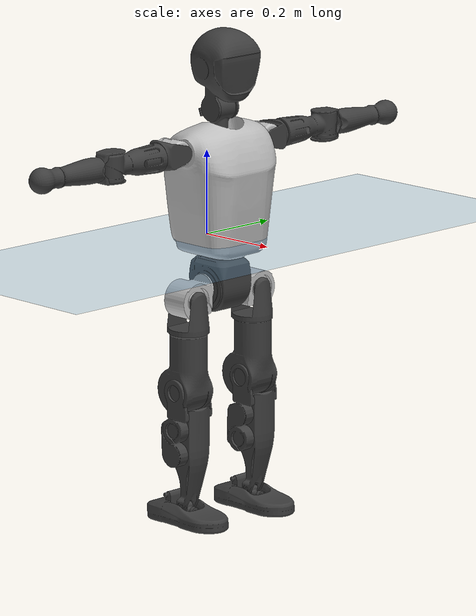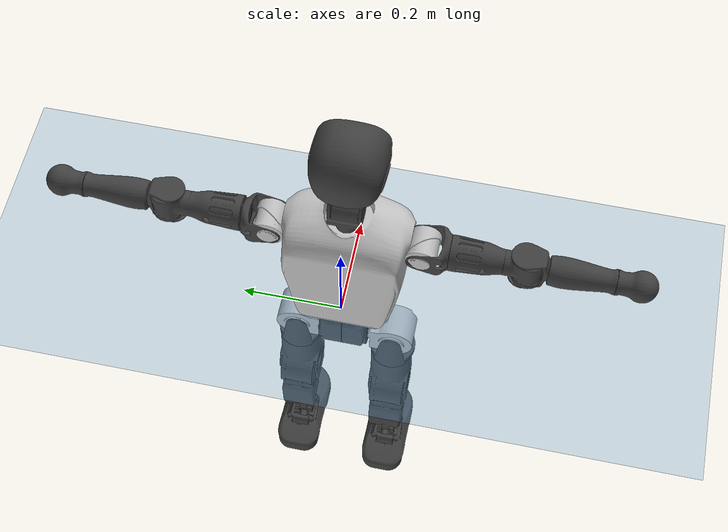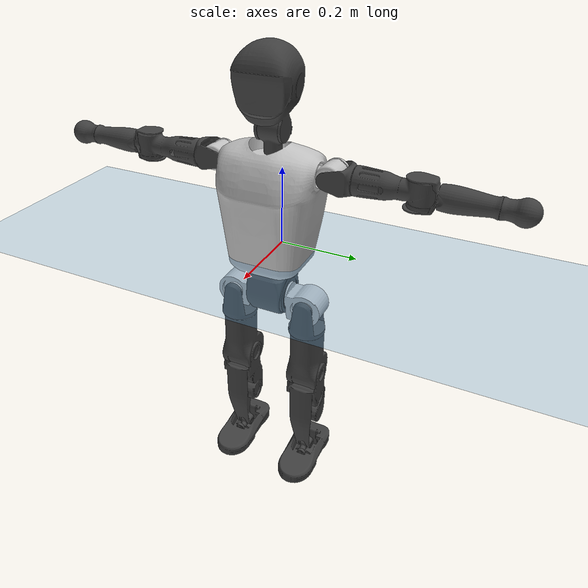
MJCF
<mujoco model="T1">
  <compiler angle="radian" assetdir="assets" balanceinertia="true" inertiafromgeom="false"/>

  <option timestep="0.005" density="1.2" viscosity="2e-05"/>

  <size nkey="1"/>

  <visual>
    <quality shadowsize="8192"/>
    <map shadowclip="0.5"/>
  </visual>

  <default>
    <default class="/">
      <joint armature="0.01" damping="0.01" frictionloss="0.1"/>
      <geom contype="0" conaffinity="0" group="1" solref="-1000 -80"/>
      <site size="0.01 0.005 0.005" group="5"/>
      <general forcelimited="true" biastype="affine" gainprm="25" biasprm="0 -25 -0.6"/>
      <default class="t1">
        <geom rgba="0.25 0.25 0.25 1"/>
        <default class="visual">
          <geom type="mesh" group="2"/>
        </default>
        <default class="collision">
          <geom group="3"/>
        </default>
        <default class="foot">
          <geom size="0.1115 0.05 0.015" type="box" condim="6" group="4" priority="1" solimp="0.015 1 0.015"/>
        </default>
        <default class="reward_collision_sphere">
          <geom group="5" rgba="1 0 0 1"/>
        </default>
      </default>
    </default>
  </default>

  <asset>
    <texture type="skybox" colorspace="auto" name="//unnamed_texture_0" builtin="gradient" rgb1="0.95 0.95 0.95" rgb2="0.95 0.95 0.95" width="100" height="600"/>
    <texture type="2d" colorspace="auto" name="texplane" builtin="checker" rgb1="0.345 0.575 0.748" rgb2="0.345 0.575 0.748" markrgb="1 1 1" width="512" height="512"/>
    <material name="MatPlane" class="/" texture="texplane" texuniform="true" texrepeat="2 2" specular="0.9"/>
    <mesh name="Trunk" class="/" file="Trunk.stl"/>
    <mesh name="H1" class="/" file="H1.stl"/>
    <mesh name="H2" class="/" file="H2.stl"/>
    <mesh name="AL1" class="/" file="AL1.stl"/>
    <mesh name="AL2" class="/" file="AL2.stl"/>
    <mesh name="AL3" class="/" file="AL3.stl"/>
    <mesh name="left_hand_link" class="/" file="left_hand_link.stl"/>
    <mesh name="AR1" class="/" file="AR1.stl"/>
    <mesh name="AR2" class="/" file="AR2.stl"/>
    <mesh name="AR3" class="/" file="AR3.stl"/>
    <mesh name="right_hand_link" class="/" file="right_hand_link.stl"/>
    <mesh name="Waist" class="/" file="Waist.stl"/>
    <mesh name="Hip_Pitch_Left" class="/" file="Hip_Pitch_Left.stl"/>
    <mesh name="Hip_Roll_Left" class="/" file="Hip_Roll_Left.stl"/>
    <mesh name="Hip_Yaw_Left" class="/" file="Hip_Yaw_Left.stl"/>
    <mesh name="Shank_Left" class="/" file="Shank_Left.stl"/>
    <mesh name="Ankle_Cross_Left" class="/" file="Ankle_Cross_Left.stl"/>
    <mesh name="left_foot_link" class="/" file="left_foot_link.stl"/>
    <mesh name="Hip_Pitch_Right" class="/" file="Hip_Pitch_Right.stl"/>
    <mesh name="Hip_Roll_Right" class="/" file="Hip_Roll_Right.stl"/>
    <mesh name="Hip_Yaw_Right" class="/" file="Hip_Yaw_Right.stl"/>
    <mesh name="Shank_Right" class="/" file="Shank_Right.stl"/>
    <mesh name="Ankle_Cross_Right" class="/" file="Ankle_Cross_Right.stl"/>
    <mesh name="right_foot_link" class="/" file="right_foot_link.stl"/>
  </asset>

  <worldbody>
    <geom name="floor" class="/" size="100 100 0.125" type="plane" group="0" material="MatPlane"/>
    <light name="toplight_shadow" class="/" pos="0 0 5" dir="0.0990148 0.0990148 -0.990148" type="directional" ambient="0.04 0.04 0.04" diffuse="0.55 0.55 0.55" specular="0.12 0.12 0.12"/>
    <light name="toplight_fill" class="/" pos="0 0 5" dir="0.0990148 0.0990148 -0.990148" type="directional" castshadow="false" ambient="0.04 0.04 0.04" diffuse="0.3 0.3 0.3" specular="0.08 0.08 0.08"/>
    <body name="trunk" childclass="t1" pos="-0.00137134 -0.0028183 0.002146" quat="0.999999 0.00102297 -0.000583226 -4.86209e-05">
      <inertial pos="0.039468 -0.00157891 0.106753" quat="0.99998 0.00225289 -0.00556704 -0.0021096" mass="8.04085" diaginertia="0.0183276 0.0589794 0.0562307"/>
      <joint name="//unnamed_joint_0" type="free" armature="0" damping="0" frictionloss="0"/>
      <geom name="//unnamed_geom_1" class="visual" rgba="0.76 0.76 0.76 1" mesh="Trunk"/>
      <geom name="//unnamed_geom_2" class="collision" size="0.0666 0.0888 0.1332" pos="0.0434115 0 0.120002" type="box"/>
      <geom name="//unnamed_geom_3" class="reward_collision_sphere" size="0.10212" pos="0.0434115 0 0.100002"/>
      <geom name="//unnamed_geom_4" class="reward_collision_sphere" size="0.01332" pos="0.0434115 0.0799388 0"/>
      <geom name="//unnamed_geom_5" class="reward_collision_sphere" size="0.01332" pos="0.0434115 -0.0799388 0"/>
      <geom name="//unnamed_geom_6" class="reward_collision_sphere" size="0.01332" pos="0.0434115 0.100629 0.180003"/>
      <geom name="//unnamed_geom_7" class="reward_collision_sphere" size="0.01332" pos="0.0434115 -0.100629 0.180003"/>
      <site name="imu" pos="-0.0127415 -0.0133095 -0.00100621" size="0.00888"/>
      <camera name="track" pos="0 -1.88091 0" quat="0.707107 0.707107 0 0" mode="trackcom"/>
      <camera name="ego_camera" pos="0.08827 0 0.420007" quat="-0.5 -0.5 0.5 0.5"/>
      <body name="H1" pos="0.0455005 0.00095324 0.243905" quat="1 -0.000380953 -0.000355307 -0.000822965">
        <inertial pos="0.00063108 -0.00163708 0.0598179" quat="0.758531 -0.0107254 0.00602338 0.651521" mass="0.311803" diaginertia="4.70685e-05 0.000169043 0.000144678"/>
        <joint name="AAHead_yaw" pos="0 0 0" axis="-0.000498156 0.0127648 0.999918" range="-1.62277 1.54941" armature="0.00990816" damping="0.00696124" frictionloss="0.076638"/>
        <geom name="//unnamed_geom_8" class="visual" mesh="H1"/>
        <body name="H2" pos="0.00226393 0.000865136 0.0626273" quat="1 0.000278438 0.000431159 -3.94703e-05">
          <inertial pos="0.00457288 -0.00130425 0.0982327" quat="0.988837 0.104036 -0.0752208 -0.075631" mass="0.425684" diaginertia="0.000387134 0.00133318 0.00165341"/>
          <joint name="Head_pitch" pos="0 0 0" axis="0.0130469 -0.999896 -0.00609122" range="-1.20277 0.389076" armature="0.00853894" damping="0.0118586" frictionloss="0.0840058"/>
          <geom name="//unnamed_geom_9" class="visual" mesh="H2"/>
          <geom name="//unnamed_geom_10" class="collision" size="0.07104" pos="0.00723525 0 0.110002"/>
          <geom name="//unnamed_geom_11" class="reward_collision_sphere" size="0.07992" pos="0.0144705 0 0.100002"/>
        </body>
      </body>
      <body name="AL1" pos="0.0415758 0.0992351 0.218327" quat="1 8.99851e-05 0.000460643 6.43116e-05">
        <inertial pos="-0.0014981 0.042098 -0.00227659" quat="0.506296 0.502311 -0.505632 0.485473" mass="0.378916" diaginertia="0.000276425 0.000982042 0.000302239"/>
        <joint name="Left_Shoulder_Pitch" pos="0 0 0" axis="-0.000368174 0.999902 -0.0140106" stiffness="0.00954207" range="-3.30412 1.19519" armature="0.00892421" damping="0.0151708" frictionloss="0.0840897"/>
        <geom name="//unnamed_geom_12" class="visual" rgba="0.76 0.76 0.76 1" mesh="AL1"/>
        <body name="AL2" pos="0.00179678 0.0426581 -0.00284081" quat="1 -0.00047433 0.000413014 0.000196228">
          <inertial pos="0.00164862 0.0337523 -0.000499469" quat="0.488121 0.511752 -0.487906 0.51166" mass="0.109995" diaginertia="7.97099e-05 0.000246208 0.000173852"/>
          <joint name="Left_Shoulder_Roll" pos="0 0 0" axis="-0.999913 -0.0126479 0.00362821" range="-1.51977 1.73711" armature="0.00826383" damping="0" frictionloss="0.10046"/>
          <geom name="//unnamed_geom_13" class="visual" mesh="AL2"/>
          <body name="AL3" pos="0.0033441 0.0591641 0.00208763" quat="0.999999 -0.000142806 -0.000319521 -0.0010479">
            <inertial pos="-0.000557241 0.0774418 -0.00114102" quat="0.714281 0.699854 0.00248727 8.31959e-05" mass="0.711358" diaginertia="0.00249574 0.00949171 0.000589223"/>
            <joint name="Left_Elbow_Pitch" pos="0 0 0" axis="0.0140166 -0.999898 0.00269901" range="-2.23584 2.22391" armature="0.0100694" damping="0" frictionloss="0.101247"/>
            <geom name="//unnamed_geom_14" class="visual" mesh="AL3"/>
            <geom name="//unnamed_geom_15" class="collision" size="0.02664 0.0666" pos="0 0.0470228 0" quat="0.707105 0.707108 0 0" type="cylinder"/>
            <geom name="//unnamed_geom_16" class="reward_collision_sphere" size="0.031968"/>
            <body name="left_hand_link" pos="0.00259432 0.138591 -0.00135556" quat="0.999999 -0.000751431 0.000473929 0.000993397">
              <inertial pos="0.00011664 0.10382 -0.00231025" quat="0.708069 0.706122 -0.00463963 -0.00296342" mass="0.236146" diaginertia="0.00165846 0.00607178 0.000214296"/>
              <joint name="Left_Elbow_Yaw" pos="0 0 0" axis="-0.00339149 0.0169316 0.999851" stiffness="0.010364" range="-2.44524 0.00573825" armature="0.00881821" damping="0.0113749" frictionloss="0.0992243"/>
              <geom name="//unnamed_geom_17" class="visual" mesh="left_hand_link"/>
              <geom name="//unnamed_geom_18" class="collision" size="0.02664 0.0777" pos="0 0.122259 0" quat="0.707105 0.707108 0 0" type="cylinder"/>
              <geom name="//unnamed_geom_19" class="reward_collision_sphere" size="0.0444"/>
              <geom name="//unnamed_geom_20" class="reward_collision_sphere" size="0.03108" pos="0 0.10345 0"/>
              <geom name="//unnamed_geom_21" class="reward_collision_sphere" size="0.03108" pos="0 0.202198 0"/>
            </body>
          </body>
        </body>
      </body>
      <body name="AR1" pos="0.0408991 -0.0977966 0.219561" quat="1 -0.000494986 -0.000334608 0.000190929">
        <inertial pos="-0.00103105 -0.0449956 0.00247632" quat="0.504329 0.495386 -0.503965 0.496251" mass="0.371646" diaginertia="0.000259782 0.000957728 0.000301006"/>
        <joint name="Right_Shoulder_Pitch" pos="0 0 0" axis="-0.000371613 -1 -3.54118e-05" stiffness="0.00126193" range="-1.2297 3.30772" armature="0.00776889" damping="0.00945548" frictionloss="0.0862973"/>
        <geom name="//unnamed_geom_22" class="visual" rgba="0.76 0.76 0.76 1" mesh="AR1"/>
        <body name="AR2" pos="0.0005687 -0.0403618 -0.00117296" quat="1 -3.00668e-05 8.06154e-05 -2.41301e-05">
          <inertial pos="0.00311424 -0.0357675 -0.00223381" quat="0.511069 0.49439 -0.503087 0.491213" mass="0.115141" diaginertia="7.69591e-05 0.000246814 0.000170809"/>
          <joint name="Right_Shoulder_Roll" pos="0 0 0" axis="-0.999987 -0.000996902 -0.00506947" stiffness="0.0097965" range="-1.74397 1.6248" armature="0.0086967" damping="0" frictionloss="0.0875293"/>
          <geom name="//unnamed_geom_23" class="visual" mesh="AR2"/>
          <body name="AR3" pos="0.00242921 -0.0562253 -0.00316943" quat="1 0.000444774 -3.98244e-05 0.000445424">
            <inertial pos="0.000624176 -0.0825108 0.000948801" quat="0.708276 0.705932 0.00149211 -0.00151813" mass="0.714461" diaginertia="0.00256618 0.00983695 0.000644726"/>
            <joint name="Right_Elbow_Pitch" pos="0 0 0" axis="0.00442685 0.99999 0.000655" range="-2.27061 2.27569" armature="0.00998786" damping="0.00748616" frictionloss="0.077276"/>
            <geom name="//unnamed_geom_24" class="visual" mesh="AR3"/>
            <geom name="//unnamed_geom_25" class="collision" size="0.02664 0.0666" pos="0 -0.0470228 0" quat="0.707105 0.707108 0 0" type="cylinder"/>
            <geom name="//unnamed_geom_26" class="reward_collision_sphere" size="0.031968"/>
            <body name="right_hand_link" pos="-0.000171515 -0.13924 0.000670902" quat="0.999999 0.000576451 -0.000284592 -0.0010939">
              <inertial pos="-6.76596e-05 -0.102137 -0.00143132" quat="0.699136 0.714974 0.00188697 0.0042215" mass="0.233166" diaginertia="0.0015613 0.00598684 0.000220894"/>
              <joint name="Right_Elbow_Yaw" pos="0 0 0" axis="-0.00453426 0.00629164 0.99997" range="-0.0517927 2.48191" armature="0.0091132" damping="0.00504493" frictionloss="0.0894389"/>
              <geom name="//unnamed_geom_27" class="visual" mesh="right_hand_link"/>
              <geom name="//unnamed_geom_28" class="collision" size="0.02664 0.0777" pos="0 -0.122259 0" quat="0.707105 0.707108 0 0" type="cylinder"/>
              <geom name="//unnamed_geom_29" class="reward_collision_sphere" size="0.0444"/>
              <geom name="//unnamed_geom_30" class="reward_collision_sphere" size="0.03108" pos="0 -0.10345 0"/>
              <geom name="//unnamed_geom_31" class="reward_collision_sphere" size="0.03108" pos="0 -0.202198 0"/>
            </body>
          </body>
        </body>
      </body>
      <body name="Waist" pos="0.0478533 0.000136631 -0.116251" quat="1 -0.000489651 0.000539674 0.000157203">
        <inertial pos="0.000846051 -0.000266133 0.00953464" quat="0.984682 0.00170621 -0.173989 0.0112386" mass="1.75422" diaginertia="0.00102917 0.00395448 0.00473426"/>
        <joint name="Waist" pos="0 0 0" axis="-0.0143055 0.00609572 0.999879" range="-1.57356 1.58569" armature="0.00937362" damping="0.0231002" frictionloss="0.0764767"/>
        <geom name="//unnamed_geom_32" class="visual" mesh="Waist"/>
        <body name="Hip_Pitch_Left" pos="0.00381504 0.101553 -0.00155909" quat="1 0.000388505 -0.000597947 -8.05767e-05">
          <inertial pos="0.00271414 -0.00532432 -0.0208125" quat="0.973904 0.225725 0.023465 -0.00284907" mass="0.741424" diaginertia="0.000356647 0.00108377 0.00127656"/>
          <joint name="Left_Hip_Pitch" pos="0 0 0" axis="-0.00634972 0.999936 -0.00934211" stiffness="0.000575628" range="-1.80941 1.62403" armature="0.00933172" damping="0" frictionloss="0.092669"/>
          <geom name="//unnamed_geom_33" class="visual" rgba="0.76 0.76 0.76 1" mesh="Hip_Pitch_Left"/>
          <body name="Hip_Roll_Left" pos="0.0020479 -0.000244416 -0.0179373" quat="1 9.2439e-06 -7.87206e-06 -2.25804e-06">
            <inertial pos="-0.00155332 0.00278861 -0.0540512" quat="0.698201 -0.00229891 -0.0104283 0.715822" mass="0.265494" diaginertia="0.000347792 0.0010549 0.000505542"/>
            <joint name="Left_Hip_Roll" pos="0 0 0" axis="-0.999991 0.00205846 0.00364468" range="-1.57559 0.23438" armature="0.00858634" damping="0.00891151" frictionloss="0.0766196"/>
            <geom name="//unnamed_geom_34" class="visual" mesh="Hip_Roll_Left"/>
            <geom name="//unnamed_geom_35" class="reward_collision_sphere" size="0.04884"/>
            <body name="Hip_Yaw_Left" pos="-0.000935451 0.00197137 -0.0799032" quat="1 -2.47081e-05 2.9091e-05 1.94053e-06">
              <inertial pos="-0.0052577 -0.000871853 -0.0883846" quat="0.695412 -0.0226142 -0.0293453 0.717656" mass="1.42757" diaginertia="0.00499782 0.0179492 0.0024985"/>
              <joint name="Left_Hip_Yaw" pos="0 0 0" axis="-0.00821558 0.00919124 -0.999924" range="-0.967501 0.951076" armature="0.00922548" damping="0.0123711" frictionloss="0.0902715"/>
              <geom name="//unnamed_geom_36" class="visual" mesh="Hip_Yaw_Left"/>
              <geom name="//unnamed_geom_37" class="collision" size="0.0444 0.07104" type="cylinder"/>
              <body name="Shank_Left" pos="-0.00599516 0.00199871 -0.137356" quat="1 0.000167847 0.000279176 -0.000692452">
                <inertial pos="-0.00493573 -0.00206898 -0.124342" quat="0.997567 0.00631283 -0.0258647 0.0644354" mass="1.21912" diaginertia="0.00710067 0.0253826 0.00192036"/>
                <joint name="Left_Knee_Pitch" pos="0 0 0" axis="0.00211103 0.999989 0.00414459" stiffness="0.000936372" range="0.0402291 2.33493" armature="0.00916875" damping="0.0223284" frictionloss="0.0960315"/>
                <geom name="//unnamed_geom_38" class="visual" mesh="Shank_Left"/>
                <geom name="//unnamed_geom_39" class="collision" size="0.0444 0.0666" pos="0 0 -0.120002" type="cylinder"/>
                <geom name="//unnamed_geom_40" class="reward_collision_sphere" size="0.05772"/>
                <body name="Ankle_Cross_Left" pos="0.000759918 -0.000974135 -0.282874" quat="1 8.36202e-05 -0.000114951 -0.000306787">
                  <inertial pos="-0.00200627 0.000572717 -0.00564764" quat="0.440048 0.553177 0.550055 0.444738" mass="0.0483059" diaginertia="5.82186e-06 1.79746e-05 1.12416e-05"/>
                  <joint name="Left_Ankle_Pitch" pos="0 0 0" axis="4.49125e-05 0.999916 -0.0129391" range="-0.891401 0.353103" armature="0.00890034" damping="0.00582203" frictionloss="0.0806132"/>
                  <geom name="//unnamed_geom_41" class="visual" mesh="Ankle_Cross_Left"/>
                  <body name="left_foot_link" pos="0.00111679 0.00194755 -0.011857" quat="0.999999 0.000960984 0.000120485 0.000550443">
                    <inertial pos="0.0025015 0.00043018 -0.0103126" quat="-0.000228828 0.625916 -0.0123867 0.779792" mass="0.4961" diaginertia="0.00054968 0.00179504 0.00215773"/>
                    <joint name="Left_Ankle_Roll" pos="0 0 0" axis="-0.999998 -0.000299244 -0.00221316" range="-0.454868 0.396996" armature="0.00892668" damping="0" frictionloss="0.0933744"/>
                    <geom name="//unnamed_geom_42" class="visual" mesh="left_foot_link"/>
                    <geom name="left_foot" class="foot" size="0.109797 0.0403171 0.0124591" pos="0.00723525 0 -0.0150003"/>
                    <geom name="//unnamed_geom_44" class="reward_collision_sphere" size="0.046176" pos="0.00723525 0 -0.0150003"/>
                    <geom name="//unnamed_geom_45" class="reward_collision_sphere" size="0.02664" pos="0.0687349 -0.0216305 -0.0150003"/>
                    <geom name="//unnamed_geom_46" class="reward_collision_sphere" size="0.02664" pos="-0.0506467 -0.0216305 -0.0150003"/>
                    <site name="left_foot" class="foot" pos="0.00723525 0 -0.0150003" size="0.00888"/>
                  </body>
                </body>
              </body>
            </body>
          </body>
        </body>
        <body name="Hip_Pitch_Right" pos="-0.00345514 -0.100836 0.000131261" quat="0.999999 -0.00115274 0.000791071 0.00087573">
          <inertial pos="-0.00199806 0.00687499 -0.0150868" quat="0.973581 -0.227658 0.0174384 -0.00267322" mass="0.732079" diaginertia="0.000364862 0.00110548 0.00130371"/>
          <joint name="Right_Hip_Pitch" pos="0 0 0" axis="0.00128199 -0.999999 -0.000238718" range="-1.56792 1.82202" armature="0.00926548" damping="0" frictionloss="0.101089"/>
          <geom name="//unnamed_geom_47" class="visual" rgba="0.76 0.76 0.76 1" mesh="Hip_Pitch_Right"/>
          <body name="Hip_Roll_Right" pos="0.00242093 0.000504718 -0.0215818" quat="1 3.70656e-06 7.03753e-06 7.18443e-06">
            <inertial pos="-0.00172671 -0.00242408 -0.0564626" quat="0.709485 -0.0121176 -0.013411 0.704489" mass="0.279507" diaginertia="0.000342137 0.00112101 0.000507468"/>
            <joint name="Right_Hip_Roll" pos="0 0 0" axis="-0.999986 -0.0011886 -0.00519247" range="-0.249827 1.58716" armature="0.00990188" damping="0.00591449" frictionloss="0.0795022"/>
            <geom name="//unnamed_geom_48" class="visual" mesh="Hip_Roll_Right"/>
            <geom name="//unnamed_geom_49" class="reward_collision_sphere" size="0.04884"/>
            <body name="Hip_Yaw_Right" pos="-0.00188883 0.000997662 -0.0823134" quat="1 8.39022e-05 -2.23299e-05 6.61084e-06">
              <inertial pos="-0.00477784 -0.00314375 -0.0870469" quat="0.714521 -0.0277912 -0.0337343 0.698247" mass="1.56595" diaginertia="0.00507453 0.019817 0.00258352"/>
              <joint name="Right_Hip_Yaw" pos="0 0 0" axis="0.00187224 -0.00423686 -0.999989" stiffness="0.00873158" range="-0.979317 1.00762" armature="0.00790253" damping="0" frictionloss="0.0921188"/>
              <geom name="//unnamed_geom_50" class="visual" mesh="Hip_Yaw_Right"/>
              <geom name="//unnamed_geom_51" class="collision" size="0.0444 0.07104" type="cylinder"/>
              <body name="Shank_Right" pos="-0.00770337 0.000605165 -0.135757" quat="1 9.27248e-07 4.20323e-05 -1.36043e-05">
                <inertial pos="-0.00201622 0.00137993 -0.121924" quat="0.998738 -0.000609494 -0.0369253 -0.034044" mass="1.28676" diaginertia="0.00731051 0.0260793 0.00196191"/>
                <joint name="Right_Knee_Pitch" pos="0 0 0" axis="-0.00479883 -0.999988 -0.000405278" range="-2.34111 0.000737174" armature="0.00889941" damping="0.00679875" frictionloss="0.0970595"/>
                <geom name="//unnamed_geom_52" class="visual" mesh="Shank_Right"/>
                <geom name="//unnamed_geom_53" class="collision" size="0.0444 0.0666" pos="0 0 -0.120002" type="cylinder"/>
                <geom name="//unnamed_geom_54" class="reward_collision_sphere" size="0.05772"/>
                <body name="Ankle_Cross_Right" pos="0.00284725 0.000177492 -0.280449" quat="1 3.76155e-05 -7.24735e-06 4.91581e-05">
                  <inertial pos="-0.0020168 0.00247484 -0.00831793" quat="0.444131 0.55859 0.546927 0.437716" mass="0.0492598" diaginertia="5.94316e-06 1.89824e-05 1.09954e-05"/>
                  <joint name="Right_Ankle_Pitch" pos="0 0 0" axis="0.00657432 -0.999947 -0.00786006" range="-0.366743 0.862937" armature="0.00876032" damping="0.00531795" frictionloss="0.0906345"/>
                  <geom name="//unnamed_geom_55" class="visual" mesh="Ankle_Cross_Right"/>
                  <body name="right_foot_link" pos="0.000167816 -0.00394049 -0.00912627" quat="1 -8.64652e-05 1.05465e-05 -0.0001002">
                    <inertial pos="0.00217869 -0.000515667 -0.0065094" quat="-0.0138127 0.619514 -0.00209299 0.784861" mass="0.475022" diaginertia="0.000548081 0.00177322 0.00213772"/>
                    <joint name="Right_Ankle_Roll" pos="0 0 0" axis="-0.999891 0.000187368 0.0147414" stiffness="0.00102394" range="-0.435729 0.418105" armature="0.00936035" damping="0.00942946" frictionloss="0.077812"/>
                    <geom name="//unnamed_geom_56" class="visual" mesh="right_foot_link"/>
                    <geom name="right_foot" class="foot" size="0.103512 0.0397816 0.0121126" pos="0.00723525 0 -0.0150003"/>
                    <geom name="//unnamed_geom_58" class="reward_collision_sphere" size="0.03552"/>
                    <geom name="//unnamed_geom_59" class="reward_collision_sphere" size="0.02664" pos="0.00723525 0 -0.0150003"/>
                    <geom name="//unnamed_geom_60" class="reward_collision_sphere" size="0.02664" pos="0.0687349 0.0216305 -0.0150003"/>
                    <geom name="//unnamed_geom_61" class="reward_collision_sphere" size="0.02664" pos="-0.0506467 0.0216305 -0.0150003"/>
                    <site name="right_foot" class="foot" pos="0.00723525 0 -0.0150003" size="0.00888"/>
                  </body>
                </body>
              </body>
            </body>
          </body>
        </body>
      </body>
    </body>
  </worldbody>

  <contact>
    <pair class="/" geom1="floor" geom2="left_foot" name="//unnamed_contact_0"/>
    <pair class="/" geom1="floor" geom2="right_foot" name="//unnamed_contact_1"/>
  </contact>

  <actuator>
    <general name="AAHead_yaw" class="/" joint="AAHead_yaw" forcerange="-5.58687 5.58687" gainprm="22.1327" biasprm="0 -22.1327 -0.507779"/>
    <general name="Head_pitch" class="/" joint="Head_pitch" forcerange="-6.45804 6.45804" gainprm="22.1327" biasprm="0 -22.1327 -0.507779"/>
    <general name="Left_Shoulder_Pitch" class="/" joint="Left_Shoulder_Pitch" forcerange="-16.0801 16.0801" gainprm="22.1327" biasprm="0 -22.1327 -0.507779"/>
    <general name="Left_Shoulder_Roll" class="/" joint="Left_Shoulder_Roll" forcerange="-16.5154 16.5154" gainprm="22.1327" biasprm="0 -22.1327 -0.507779"/>
    <general name="Left_Elbow_Pitch" class="/" joint="Left_Elbow_Pitch" forcerange="-17.722 17.722" gainprm="22.1327" biasprm="0 -22.1327 -0.507779"/>
    <general name="Left_Elbow_Yaw" class="/" joint="Left_Elbow_Yaw" forcerange="-17.2942 17.2942" gainprm="22.1327" biasprm="0 -22.1327 -0.507779"/>
    <general name="Right_Shoulder_Pitch" class="/" joint="Right_Shoulder_Pitch" forcerange="-16.1279 16.1279" gainprm="22.1327" biasprm="0 -22.1327 -0.507779"/>
    <general name="Right_Shoulder_Roll" class="/" joint="Right_Shoulder_Roll" forcerange="-17.6929 17.6929" gainprm="22.1327" biasprm="0 -22.1327 -0.507779"/>
    <general name="Right_Elbow_Pitch" class="/" joint="Right_Elbow_Pitch" forcerange="-17.5225 17.5225" gainprm="22.1327" biasprm="0 -22.1327 -0.507779"/>
    <general name="Right_Elbow_Yaw" class="/" joint="Right_Elbow_Yaw" forcerange="-14.2321 14.2321" gainprm="22.1327" biasprm="0 -22.1327 -0.507779"/>
    <general name="Waist" class="/" joint="Waist" forcerange="-26.7545 26.7545" gainprm="22.1327" biasprm="0 -22.1327 -0.507779"/>
    <general name="Left_Hip_Pitch" class="/" joint="Left_Hip_Pitch" forcerange="-43.483 43.483" gainprm="22.1327" biasprm="0 -22.1327 -0.507779"/>
    <general name="Left_Hip_Roll" class="/" joint="Left_Hip_Roll" forcerange="-27.6794 27.6794" gainprm="22.1327" biasprm="0 -22.1327 -0.507779"/>
    <general name="Left_Hip_Yaw" class="/" joint="Left_Hip_Yaw" forcerange="-27.2548 27.2548" gainprm="22.1327" biasprm="0 -22.1327 -0.507779"/>
    <general name="Left_Knee_Pitch" class="/" joint="Left_Knee_Pitch" forcerange="-52.6784 52.6784" gainprm="22.1327" biasprm="0 -22.1327 -0.507779"/>
    <general name="Left_Ankle_Pitch" class="/" joint="Left_Ankle_Pitch" forcerange="-17.7768 17.7768" gainprm="22.1327" biasprm="0 -22.1327 -0.507779"/>
    <general name="Left_Ankle_Roll" class="/" joint="Left_Ankle_Roll" forcerange="-13.3231 13.3231" gainprm="22.1327" biasprm="0 -22.1327 -0.507779"/>
    <general name="Right_Hip_Pitch" class="/" joint="Right_Hip_Pitch" forcerange="-40.9551 40.9551" gainprm="22.1327" biasprm="0 -22.1327 -0.507779"/>
    <general name="Right_Hip_Roll" class="/" joint="Right_Hip_Roll" forcerange="-26.4087 26.4087" gainprm="22.1327" biasprm="0 -22.1327 -0.507779"/>
    <general name="Right_Hip_Yaw" class="/" joint="Right_Hip_Yaw" forcerange="-26.3299 26.3299" gainprm="22.1327" biasprm="0 -22.1327 -0.507779"/>
    <general name="Right_Knee_Pitch" class="/" joint="Right_Knee_Pitch" forcerange="-49.1771 49.1771" gainprm="22.1327" biasprm="0 -22.1327 -0.507779"/>
    <general name="Right_Ankle_Pitch" class="/" joint="Right_Ankle_Pitch" forcerange="-15.9097 15.9097" gainprm="22.1327" biasprm="0 -22.1327 -0.507779"/>
    <general name="Right_Ankle_Roll" class="/" joint="Right_Ankle_Roll" forcerange="-14.5413 14.5413" gainprm="22.1327" biasprm="0 -22.1327 -0.507779"/>
  </actuator>

  <sensor>
    <gyro site="imu" name="imu_angular_velocity"/>
    <velocimeter site="imu" name="imu_linear_velocity"/>
    <framelinvel objtype="site" objname="left_foot" name="left_foot_global_linear_velocity"/>
    <framelinvel objtype="site" objname="right_foot" name="right_foot_global_linear_velocity"/>
  </sensor>

  <keyframe>
    <key name="home" qpos="0 0 0.6385 1 0 0 0 0 0 0 1.4 0 -0.4 0 -1.4 0 0.4 0 -0.4 0 0 0.8 -0.4 0 0.4 0 0 -0.8 0.4 0"/>
  </keyframe>
</mujoco>
